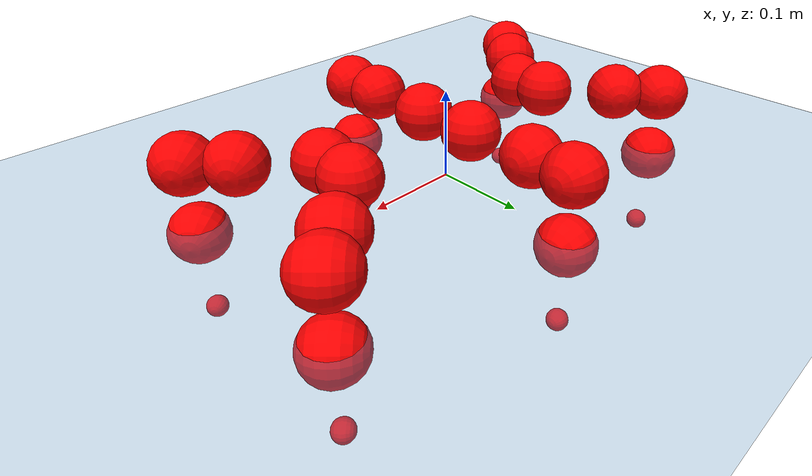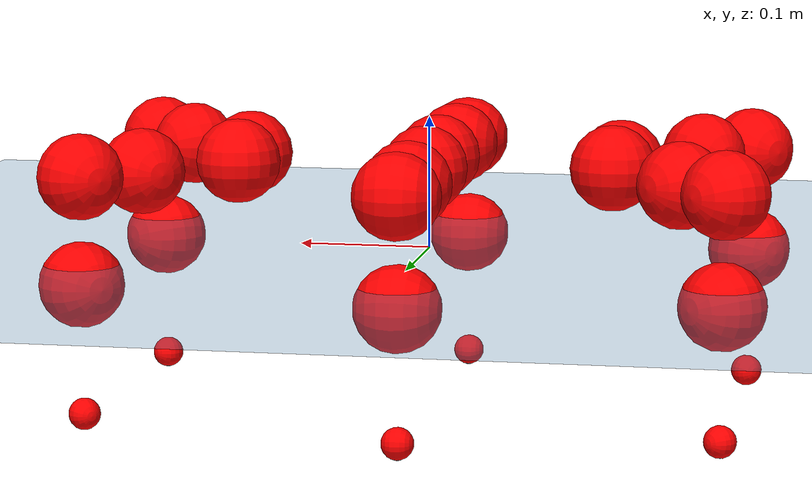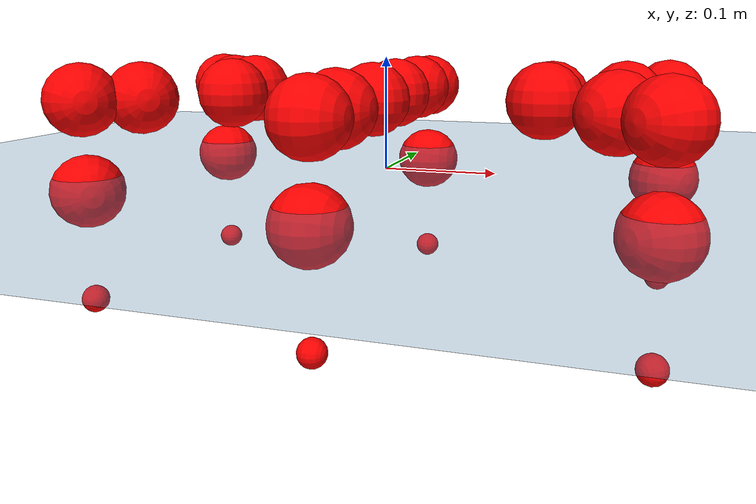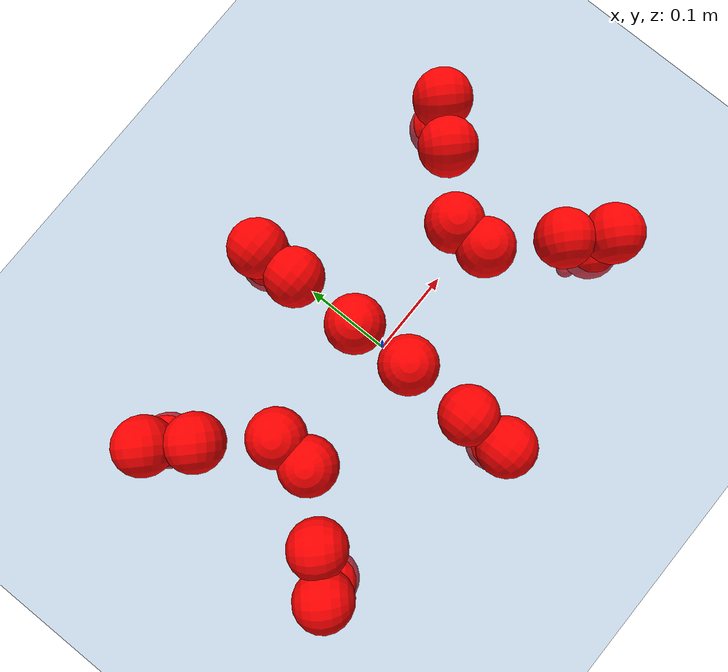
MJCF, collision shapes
<mujoco model="Golem">
  <compiler angle="radian" assetdir="assets" balanceinertia="true" inertiafromgeom="false"/>

  <option timestep="0.005" density="1.2" viscosity="2e-05"/>

  <size nkey="1"/>

  <visual>
    <quality shadowsize="8192"/>
    <map shadowclip="0.5"/>
  </visual>

  <default>
    <default class="/">
      <joint armature="0.01" damping="0.01" frictionloss="0.01"/>
      <geom contype="0" conaffinity="0" group="1" solref="-1000 -80"/>
      <site size="0.01 0.005 0.005" group="5"/>
      <general forcelimited="true" biastype="affine" gainprm="25" biasprm="0 -25 -0.5"/>
      <default class="visual">
        <geom type="mesh" group="2"/>
      </default>
      <default class="collision">
        <geom group="3"/>
      </default>
      <default class="foot">
        <geom size="0.01 0 0" condim="6" group="4" priority="1" solimp="0.015 1 0.01"/>
      </default>
      <default class="reward_collision_sphere">
        <geom group="5" rgba="1 0 0 1"/>
      </default>
    </default>
  </default>

  <asset>
    <texture type="skybox" colorspace="auto" name="//unnamed_texture_0" builtin="gradient" rgb1="0.95 0.95 0.95" rgb2="0.95 0.95 0.95" width="100" height="600"/>
    <texture type="2d" colorspace="auto" name="texplane" builtin="checker" rgb1="0.345 0.575 0.748" rgb2="0.345 0.575 0.748" markrgb="1 1 1" width="512" height="512"/>
    <material name="MatPlane" class="/" texture="texplane" texuniform="true" texrepeat="2 2" specular="0.9"/>
    <mesh name="body" class="/" file="body.stl" scale="0.001 0.001 0.001"/>
    <mesh name="coxa" class="/" file="coxa.stl" scale="0.001 0.001 0.001"/>
    <mesh name="femur" class="/" file="femur.stl" scale="0.001 0.001 0.001"/>
    <mesh name="tibia" class="/" file="tibia.stl" scale="0.001 0.001 0.001"/>
    <mesh name="tarsus" class="/" file="tarsus.stl" scale="0.001 0.001 0.001"/>
  </asset>

  <worldbody>
    <geom name="floor" class="/" size="100 100 0.125" type="plane" group="0" material="MatPlane"/>
    <light name="toplight_shadow" class="/" pos="0 0 5" dir="0.0990148 0.0990148 -0.990148" type="directional" ambient="0.04 0.04 0.04" diffuse="0.55 0.55 0.55" specular="0.12 0.12 0.12"/>
    <light name="toplight_fill" class="/" pos="0 0 5" dir="0.0990148 0.0990148 -0.990148" type="directional" castshadow="false" ambient="0.04 0.04 0.04" diffuse="0.3 0.3 0.3" specular="0.08 0.08 0.08"/>
    <body name="trunk" pos="-8.71964e-05 0.000120633 0.000188715" quat="1 0.000244688 0.000223808 -0.000491889">
      <inertial pos="9.77878e-05 -0.000585927 -0.00359603" quat="1 -6.34279e-05 -2.22089e-05 -3.61359e-05" mass="1.90432" diaginertia="0.00627673 0.000226242 0.010957"/>
      <joint name="//unnamed_joint_0" type="free"/>
      <geom name="//unnamed_geom_1" class="/" pos="0 0 0.0651937" quat="1 0 0 0" type="mesh" rgba="0.9 0.9 0.9 1" mesh="body"/>
      <site name="imu" class="/" pos="0.122769 0.00436119 0.102893" size="0.00799212"/>
      <camera name="track" class="/" pos="0 -0.936552 0" quat="0.707107 0.707107 0 0" mode="trackcom"/>
      <camera name="ego_camera" class="/" pos="0.118392 0 0.101865" quat="-0.5 -0.5 0.5 0.5"/>
      <body name="coxa_RR" pos="-0.162551 -0.0395102 0.0660355" quat="0.382109 3.44097e-05 -0.0001853 -0.924117">
        <inertial pos="-0.000322998 0.000163589 0.00056844" quat="0.999994 0.00135442 -0.00328738 -0.000479523" mass="0.101477" diaginertia="0.00626519 0.000224581 0.010991"/>
        <joint name="coxa_joint_RR" class="/" pos="0 0 0" axis="0.00165444 0.00278739 -0.999995" range="-3.13388 3.12582" armature="0.00797981" damping="0.00826617" frictionloss="0.00765114"/>
        <geom name="//unnamed_geom_2" class="/" type="mesh" rgba="0.2 0.2 0.2 1" mesh="coxa"/>
        <geom name="//unnamed_geom_3" class="reward_collision_sphere" size="0.0319685" pos="-0.0273212 0 0"/>
        <body name="femur_RR" pos="0.05511 0.00146681 -0.00137646" quat="0.500004 -0.5 0.500007 0.499988">
          <inertial pos="0.000199098 2.12461e-05 -0.000386022" quat="1 -0.000316753 0.000188638 1.04689e-05" mass="0.101706" diaginertia="0.00619295 0.000222525 0.0110009"/>
          <joint name="femur_joint_RR" class="/" pos="0 0 0" axis="-0.00296753 -0.00147224 -0.999995" range="-3.12828 3.13293" armature="0.00792444" damping="0.00157824" frictionloss="0.0080916"/>
          <geom name="//unnamed_geom_4" class="/" type="mesh" rgba="0.9 0.9 0.9 1" mesh="femur"/>
          <geom name="//unnamed_geom_5" class="reward_collision_sphere" size="0.0319685"/>
          <body name="tibia_RR" pos="-0.000173258 -0.0506375 0.0013267" quat="0.000125618 1 0.000257243 0.00013672">
            <inertial pos="-0.00016817 -0.00043349 -0.000158727" quat="1 2.46105e-05 -2.14122e-05 3.41159e-05" mass="0.101957" diaginertia="0.00628918 0.000225129 0.0109479"/>
            <joint name="tibia_joint_RR" class="/" pos="0 0 0" axis="0.00218384 0.000208708 0.999998" range="-3.12485 3.13265" armature="0.00805165" damping="0" frictionloss="0.00779158"/>
            <geom name="//unnamed_geom_6" class="/" type="mesh" rgba="0.2 0.2 0.2 1" mesh="tibia"/>
            <geom name="//unnamed_geom_7" class="reward_collision_sphere" size="0.0319685"/>
            <body name="tarsus_RR" pos="0.0790002 -0.000316794 -0.00109679" quat="1 -3.0184e-05 0.000224244 -0.000101715">
              <inertial pos="0.0554323 0.000453648 0.0004274" quat="0.500006 0.498991 0.500471 0.500532" mass="0.10063" diaginertia="0.00613271 0.000224942 0.0107308"/>
              <joint name="tarsus_joint_RR" class="/" pos="0 0 0" axis="-0.00275934 0.000856189 0.999996" range="-3.12074 3.12888" armature="0.00799111" damping="0.00197387" frictionloss="0.00818032"/>
              <geom name="//unnamed_geom_8" class="/" type="mesh" rgba="0.9 0.9 0.9 1" mesh="tarsus"/>
              <geom name="foot_1" class="foot" size="0.00771563" pos="0.101999 0 0" quat="0 -0.707107 0 0.707107"/>
              <geom name="//unnamed_geom_10" class="reward_collision_sphere" size="0.0319685"/>
              <geom name="//unnamed_geom_11" class="reward_collision_sphere" size="0.0119882" pos="0.097901 0 0"/>
              <site name="foot_1" class="foot" pos="0.101999 0 0" quat="0 -0.707107 0 0.707107" size="0.00799212"/>
            </body>
          </body>
        </body>
      </body>
      <body name="coxa_RM" pos="-0.000601812 -0.0622522 0.0651113" quat="0.70714 -0.000252641 -4.84383e-05 -0.707074">
        <inertial pos="-0.000618364 -0.00027797 9.77091e-05" quat="1 2.73393e-05 -7.46516e-06 3.91014e-05" mass="0.101825" diaginertia="0.00620835 0.000226165 0.0110052"/>
        <joint name="coxa_joint_RM" class="/" pos="0 0 0" axis="-0.00350984 -0.00112283 -0.999993" stiffness="1.46811e-05" range="-3.1365 3.13795" armature="0.00837639" damping="0.00977774" frictionloss="0.00820006"/>
        <geom name="//unnamed_geom_12" class="/" type="mesh" rgba="0.2 0.2 0.2 1" mesh="coxa"/>
        <geom name="//unnamed_geom_13" class="reward_collision_sphere" size="0.0319685" pos="-0.0273212 0 0"/>
        <body name="femur_RM" pos="0.0521311 -0.00128304 -0.000760399" quat="0.499877 -0.49992 0.500076 0.500127">
          <inertial pos="-0.000740658 0.00010297 9.23383e-07" quat="0.999999 0.000827928 0.00056464 -0.000180268" mass="0.100534" diaginertia="0.00616636 0.000226278 0.0110252"/>
          <joint name="femur_joint_RM" class="/" pos="0 0 0" axis="0.00125 0.00138492 -0.999998" range="-3.12073 3.14496" armature="0.0080173" damping="0.000892007" frictionloss="0.00773121"/>
          <geom name="//unnamed_geom_14" class="/" type="mesh" rgba="0.9 0.9 0.9 1" mesh="femur"/>
          <geom name="//unnamed_geom_15" class="reward_collision_sphere" size="0.0319685"/>
          <body name="tibia_RM" pos="0.00134614 -0.0494946 -0.000945485" quat="0.000151234 1 -0.000160147 0.000186304">
            <inertial pos="-0.00053649 -0.000363248 -0.000233181" quat="1 0.000168488 0.00050421 0.000338311" mass="0.102089" diaginertia="0.00628411 0.00022385 0.0109372"/>
            <joint name="tibia_joint_RM" class="/" pos="0 0 0" axis="0.000226768 -0.000251582 1" range="-3.13012 3.15385" armature="0.00816212" damping="0.00222268" frictionloss="0.00840462"/>
            <geom name="//unnamed_geom_16" class="/" type="mesh" rgba="0.2 0.2 0.2 1" mesh="tibia"/>
            <geom name="//unnamed_geom_17" class="reward_collision_sphere" size="0.0319685"/>
            <body name="tarsus_RM" pos="0.0789748 0.000722978 0.000669441" quat="1 -9.99697e-05 -1.44363e-05 -3.70587e-05">
              <inertial pos="0.0540434 0.00075023 0.000328125" quat="0.499968 0.499657 0.497973 0.502392" mass="0.102594" diaginertia="0.00619167 0.000222878 0.0110611"/>
              <joint name="tarsus_joint_RM" class="/" pos="0 0 0" axis="7.33828e-05 0.000552438 1" range="-3.12412 3.11951" armature="0.00842247" damping="0.00224158" frictionloss="0.00788273"/>
              <geom name="//unnamed_geom_18" class="/" type="mesh" rgba="0.9 0.9 0.9 1" mesh="tarsus"/>
              <geom name="foot_2" class="foot" size="0.00820701" pos="0.101999 0 0" quat="0 -0.707107 0 0.707107"/>
              <geom name="//unnamed_geom_20" class="reward_collision_sphere" size="0.0319685"/>
              <geom name="//unnamed_geom_21" class="reward_collision_sphere" size="0.0119882" pos="0.097901 0 0"/>
              <site name="foot_2" class="foot" pos="0.101999 0 0" quat="0 -0.707107 0 0.707107" size="0.00799212"/>
            </body>
          </body>
        </body>
      </body>
      <body name="coxa_RF" pos="0.162924 -0.039773 0.0665857" quat="0.923858 7.2749e-05 0.000216352 -0.382736">
        <inertial pos="0.000673717 -0.00158799 -0.0005166" quat="0.999997 0.0025475 0.000535559 -1.57092e-05" mass="0.102376" diaginertia="0.00622417 0.000226426 0.0109782"/>
        <joint name="coxa_joint_RF" class="/" pos="0 0 0" axis="-0.00153998 -0.004268 -0.99999" range="-3.12233 3.15005" armature="0.00832712" damping="0.00223387" frictionloss="0.00782768"/>
        <geom name="//unnamed_geom_22" class="/" type="mesh" rgba="0.2 0.2 0.2 1" mesh="coxa"/>
        <geom name="//unnamed_geom_23" class="reward_collision_sphere" size="0.0319685" pos="-0.0273212 0 0"/>
        <body name="femur_RF" pos="0.0559084 0.00153086 -0.0021586" quat="0.499881 -0.500107 0.499891 0.50012">
          <inertial pos="-0.000203775 0.000142138 0.00063293" quat="0.999993 -0.00236755 0.000937122 0.00271602" mass="0.101675" diaginertia="0.00631211 0.000222459 0.0108954"/>
          <joint name="femur_joint_RF" class="/" pos="0 0 0" axis="-0.00173525 -0.000604659 -0.999998" range="-3.1506 3.13802" armature="0.00820471" damping="0" frictionloss="0.00779382"/>
          <geom name="//unnamed_geom_24" class="/" type="mesh" rgba="0.9 0.9 0.9 1" mesh="femur"/>
          <geom name="//unnamed_geom_25" class="reward_collision_sphere" size="0.0319685"/>
          <body name="tibia_RF" pos="0.000176599 -0.0510796 -0.000431672" quat="-0.000131431 1 -3.97471e-05 2.65361e-05">
            <inertial pos="0.000507804 -0.000703288 0.000572488" quat="0.999995 -0.000461803 0.00323277 -6.83809e-05" mass="0.101294" diaginertia="0.00621165 0.000225185 0.0109314"/>
            <joint name="tibia_joint_RF" class="/" pos="0 0 0" axis="-8.79633e-05 0.000223271 1" range="-3.14523 3.13606" armature="0.00811901" damping="0.0102592" frictionloss="0.0079956"/>
            <geom name="//unnamed_geom_26" class="/" type="mesh" rgba="0.2 0.2 0.2 1" mesh="tibia"/>
            <geom name="//unnamed_geom_27" class="reward_collision_sphere" size="0.0319685"/>
            <body name="tarsus_RF" pos="0.0806211 -0.000310873 0.000615831" quat="1 -7.83543e-06 -0.000285246 3.12065e-06">
              <inertial pos="0.054019 0.000472964 0.00105644" quat="0.499013 0.499051 0.501511 0.50042" mass="0.102398" diaginertia="0.00625444 0.000221956 0.0108495"/>
              <joint name="tarsus_joint_RF" class="/" pos="0 0 0" axis="-0.00487826 0.0040705 0.99998" range="-3.12357 3.13958" armature="0.00801104" damping="0.00132742" frictionloss="0.00772771"/>
              <geom name="//unnamed_geom_28" class="/" type="mesh" rgba="0.9 0.9 0.9 1" mesh="tarsus"/>
              <geom name="foot_3" class="foot" size="0.00806188" pos="0.101999 0 0" quat="0 -0.707107 0 0.707107"/>
              <geom name="//unnamed_geom_30" class="reward_collision_sphere" size="0.0319685"/>
              <geom name="//unnamed_geom_31" class="reward_collision_sphere" size="0.0119882" pos="0.097901 0 0"/>
              <site name="foot_3" class="foot" pos="0.101999 0 0" quat="0 -0.707107 0 0.707107" size="0.00799212"/>
            </body>
          </body>
        </body>
      </body>
      <body name="coxa_LR" pos="-0.160899 0.0414403 0.0674608" quat="0.382784 0.000125614 -0.000282984 0.923838">
        <inertial pos="0.000739326 -0.000645522 0.00172533" quat="0.999999 0.000960096 -0.00101825 0.000387575" mass="0.102084" diaginertia="0.0062735 0.000224678 0.0109448"/>
        <joint name="coxa_joint_LR" class="/" pos="0 0 0" axis="-0.00194063 -0.000574301 -0.999998" range="-3.1466 3.13887" armature="0.00827028" damping="0.00384534" frictionloss="0.00800092"/>
        <geom name="//unnamed_geom_32" class="/" type="mesh" rgba="0.2 0.2 0.2 1" mesh="coxa"/>
        <geom name="//unnamed_geom_33" class="reward_collision_sphere" size="0.0319685" pos="-0.0273212 0 0"/>
        <body name="femur_LR" pos="0.055366 -0.00378755 -0.00219758" quat="0.50005 -0.500297 0.499741 0.499911">
          <inertial pos="-0.000563719 -0.000563311 -0.00034671" quat="1 0.000280338 2.86791e-05 -3.24782e-06" mass="0.101342" diaginertia="0.00625462 0.000225255 0.0108344"/>
          <joint name="femur_joint_LR" class="/" pos="0 0 0" axis="-0.00098356 -0.00167809 0.999998" range="-3.15674 3.16347" armature="0.00800013" damping="0.00747919" frictionloss="0.00840965"/>
          <geom name="//unnamed_geom_34" class="/" type="mesh" rgba="0.9 0.9 0.9 1" mesh="femur"/>
          <geom name="//unnamed_geom_35" class="reward_collision_sphere" size="0.0319685"/>
          <body name="tibia_LR" pos="0.000337948 -0.0516803 -0.00206733" quat="0.000118239 1 -4.10134e-05 -0.000265011">
            <inertial pos="-0.00071726 0.000533442 -0.0003075" quat="1 -0.000111108 6.96771e-05 6.82939e-05" mass="0.102665" diaginertia="0.0062308 0.000222348 0.0108962"/>
            <joint name="tibia_joint_LR" class="/" pos="0 0 0" axis="-0.00143102 -0.000620017 -0.999999" range="-3.14133 3.13321" armature="0.00764554" damping="0.00117991" frictionloss="0.00835826"/>
            <geom name="//unnamed_geom_36" class="/" type="mesh" rgba="0.2 0.2 0.2 1" mesh="tibia"/>
            <geom name="//unnamed_geom_37" class="reward_collision_sphere" size="0.0319685"/>
            <body name="tarsus_LR" pos="0.0798281 -0.000814357 0.0006383" quat="1 2.84222e-07 5.45664e-07 -9.5973e-10">
              <inertial pos="0.0554304 0.00111248 -4.63953e-05" quat="0.499245 0.49948 0.501261 0.500012" mass="0.102669" diaginertia="0.0062955 0.000228058 0.0109896"/>
              <joint name="tarsus_joint_LR" class="/" pos="0 0 0" axis="0.000690252 -0.000792764 -0.999999" range="-3.12656 3.14048" armature="0.00798275" damping="0" frictionloss="0.00818598"/>
              <geom name="//unnamed_geom_38" class="/" type="mesh" rgba="0.9 0.9 0.9 1" mesh="tarsus"/>
              <geom name="foot_4" class="foot" size="0.00785426" pos="0.101999 0 0" quat="0.707107 0 -0.707107 0"/>
              <geom name="//unnamed_geom_40" class="reward_collision_sphere" size="0.0319685"/>
              <geom name="//unnamed_geom_41" class="reward_collision_sphere" size="0.0119882" pos="0.097901 0 0"/>
              <site name="foot_4" class="foot" pos="0.101999 0 0" quat="0.707107 0 -0.707107 0" size="0.00799212"/>
            </body>
          </body>
        </body>
      </body>
      <body name="coxa_LM" pos="-0.00244048 0.0614101 0.0655758" quat="0.706749 -0.000496817 -0.000564159 0.707464">
        <inertial pos="0.000880922 0.000204942 -0.000138255" quat="0.999999 -0.000147021 -0.00138119 0.000399462" mass="0.104283" diaginertia="0.00644267 0.00022862 0.0110217"/>
        <joint name="coxa_joint_LM" class="/" pos="0 0 0" axis="0.000221136 -0.000401234 -1" stiffness="0.00334496" range="-3.13649 3.12982" armature="0.00825843" damping="0.0038413" frictionloss="0.00789948"/>
        <geom name="//unnamed_geom_42" class="/" type="mesh" rgba="0.2 0.2 0.2 1" mesh="coxa"/>
        <geom name="//unnamed_geom_43" class="reward_collision_sphere" size="0.0319685" pos="-0.0273212 0 0"/>
        <body name="femur_LM" pos="0.0515029 0.00170956 -0.000121652" quat="0.499999 -0.500007 0.499959 0.500035">
          <inertial pos="-0.00022082 0.000680117 -0.000123114" quat="0.999991 0.000282151 0.00397922 0.00158038" mass="0.101562" diaginertia="0.00620661 0.000221855 0.0108012"/>
          <joint name="femur_joint_LM" class="/" pos="0 0 0" axis="-0.000433138 0.000384705 1" range="-3.13573 3.13721" armature="0.00834035" damping="0" frictionloss="0.00768184"/>
          <geom name="//unnamed_geom_44" class="/" type="mesh" rgba="0.9 0.9 0.9 1" mesh="femur"/>
          <geom name="//unnamed_geom_45" class="reward_collision_sphere" size="0.0319685"/>
          <body name="tibia_LM" pos="0.00122823 -0.0486826 0.000566941" quat="3.97428e-05 1 -0.000152887 -0.000157453">
            <inertial pos="-0.000815156 -0.00076808 8.99072e-05" quat="1 -1.93677e-05 -5.59764e-05 2.16643e-05" mass="0.102329" diaginertia="0.00630295 0.000225745 0.0110453"/>
            <joint name="tibia_joint_LM" class="/" pos="0 0 0" axis="0.000217117 1.2365e-05 -1" range="-3.14847 3.14" armature="0.00792276" damping="0" frictionloss="0.00835184"/>
            <geom name="//unnamed_geom_46" class="/" type="mesh" rgba="0.2 0.2 0.2 1" mesh="tibia"/>
            <geom name="//unnamed_geom_47" class="reward_collision_sphere" size="0.0319685"/>
            <body name="tarsus_LM" pos="0.0803623 -0.000143354 -0.000604388" quat="1 -2.94853e-05 -4.94953e-05 -4.34051e-05">
              <inertial pos="0.0556317 1.7753e-05 -0.00010808" quat="0.499027 0.499795 0.500083 0.501093" mass="0.103745" diaginertia="0.00631623 0.000226418 0.0110218"/>
              <joint name="tarsus_joint_LM" class="/" pos="0 0 0" axis="-7.8397e-05 -0.00288974 -0.999996" range="-3.13938 3.1485" armature="0.00796636" damping="0.00255219" frictionloss="0.00803747"/>
              <geom name="//unnamed_geom_48" class="/" type="mesh" rgba="0.9 0.9 0.9 1" mesh="tarsus"/>
              <geom name="foot_5" class="foot" size="0.00818064" pos="0.101999 0 0" quat="0.707107 0 -0.707107 0"/>
              <geom name="//unnamed_geom_50" class="reward_collision_sphere" size="0.0319685"/>
              <geom name="//unnamed_geom_51" class="reward_collision_sphere" size="0.0119882" pos="0.097901 0 0"/>
              <site name="foot_5" class="foot" pos="0.101999 0 0" quat="0.707107 0 -0.707107 0" size="0.00799212"/>
            </body>
          </body>
        </body>
      </body>
      <body name="coxa_LF" pos="0.163347 0.039307 0.0656955" quat="0.923904 0.000145879 -0.000137878 0.382625">
        <inertial pos="-0.00049141 0.000673966 -4.01746e-06" quat="1 -0.000464496 1.05208e-05 0.000737311" mass="0.102252" diaginertia="0.0062839 0.000225755 0.0110276"/>
        <joint name="coxa_joint_LF" class="/" pos="0 0 0" axis="0.000705055 -0.00132621 -0.999999" range="-3.12587 3.1492" armature="0.00798108" damping="0.000157717" frictionloss="0.00762617"/>
        <geom name="//unnamed_geom_52" class="/" type="mesh" rgba="0.2 0.2 0.2 1" mesh="coxa"/>
        <geom name="//unnamed_geom_53" class="reward_collision_sphere" size="0.0319685" pos="-0.0273212 0 0"/>
        <body name="femur_LF" pos="0.0546785 -0.00225228 -0.00121948" quat="0.499677 -0.499937 0.500447 0.499939">
          <inertial pos="0.000392861 -0.00051728 -0.000577926" quat="0.999985 0.00440629 0.00270997 0.00198728" mass="0.10178" diaginertia="0.00626603 0.000223183 0.0110558"/>
          <joint name="femur_joint_LF" class="/" pos="0 0 0" axis="-3.67852e-05 1.8667e-07 1" range="-3.14515 3.1557" armature="0.00797135" damping="0" frictionloss="0.00749484"/>
          <geom name="//unnamed_geom_54" class="/" type="mesh" rgba="0.9 0.9 0.9 1" mesh="femur"/>
          <geom name="//unnamed_geom_55" class="reward_collision_sphere" size="0.0319685"/>
          <body name="tibia_LF" pos="-4.71462e-05 -0.0518361 -0.000151043" quat="2.90223e-05 1 3.14107e-05 -1.85144e-05">
            <inertial pos="0.000420052 8.74872e-06 -0.000359466" quat="0.99999 0.00117123 -0.00067447 0.00435093" mass="0.101131" diaginertia="0.00628121 0.000227732 0.011093"/>
            <joint name="tibia_joint_LF" class="/" pos="0 0 0" axis="-0.000256477 -7.25181e-05 -1" range="-3.15918 3.1345" armature="0.00763332" damping="0" frictionloss="0.00826985"/>
            <geom name="//unnamed_geom_56" class="/" type="mesh" rgba="0.2 0.2 0.2 1" mesh="tibia"/>
            <geom name="//unnamed_geom_57" class="reward_collision_sphere" size="0.0319685"/>
            <body name="tarsus_LF" pos="0.080261 0.000383161 0.000304112" quat="1 7.66445e-05 0.000105354 -1.95985e-05">
              <inertial pos="0.0571229 9.93205e-05 0.00135354" quat="0.500191 0.499839 0.499897 0.500074" mass="0.102351" diaginertia="0.0062956 0.000226929 0.0110922"/>
              <joint name="tarsus_joint_LF" class="/" pos="0 0 0" axis="-0.000565813 0.000553262 -1" stiffness="0.0314647" range="-3.13559 3.11791" armature="0.00794318" damping="0.023417" frictionloss="0.0081658"/>
              <geom name="//unnamed_geom_58" class="/" type="mesh" rgba="0.9 0.9 0.9 1" mesh="tarsus"/>
              <geom name="foot_6" class="foot" size="0.00794819" pos="0.101999 0 0" quat="0.707107 0 -0.707107 0"/>
              <geom name="//unnamed_geom_60" class="reward_collision_sphere" size="0.0319685"/>
              <geom name="//unnamed_geom_61" class="reward_collision_sphere" size="0.0119882" pos="0.097901 0 0"/>
              <site name="foot_6" class="foot" pos="0.101999 0 0" quat="0.707107 0 -0.707107 0" size="0.00799212"/>
            </body>
          </body>
        </body>
      </body>
    </body>
  </worldbody>

  <contact>
    <pair class="/" geom1="floor" geom2="foot_1" name="//unnamed_contact_0"/>
    <pair class="/" geom1="floor" geom2="foot_2" name="//unnamed_contact_1"/>
    <pair class="/" geom1="floor" geom2="foot_3" name="//unnamed_contact_2"/>
    <pair class="/" geom1="floor" geom2="foot_4" name="//unnamed_contact_3"/>
    <pair class="/" geom1="floor" geom2="foot_5" name="//unnamed_contact_4"/>
    <pair class="/" geom1="floor" geom2="foot_6" name="//unnamed_contact_5"/>
  </contact>

  <actuator>
    <general name="coxa_joint_RR" class="/" joint="coxa_joint_RR" forcerange="-5.72405 5.72405" gainprm="18.6848" biasprm="0 -18.6848 -0.405633"/>
    <general name="femur_joint_RR" class="/" joint="femur_joint_RR" forcerange="-5.66244 5.66244" gainprm="18.6848" biasprm="0 -18.6848 -0.405633"/>
    <general name="tibia_joint_RR" class="/" joint="tibia_joint_RR" forcerange="-5.79545 5.79545" gainprm="18.6848" biasprm="0 -18.6848 -0.405633"/>
    <general name="tarsus_joint_RR" class="/" joint="tarsus_joint_RR" forcerange="-5.93439 5.93439" gainprm="18.6848" biasprm="0 -18.6848 -0.405633"/>
    <general name="coxa_joint_RM" class="/" joint="coxa_joint_RM" forcerange="-5.73374 5.73374" gainprm="18.6848" biasprm="0 -18.6848 -0.405633"/>
    <general name="femur_joint_RM" class="/" joint="femur_joint_RM" forcerange="-5.83389 5.83389" gainprm="18.6848" biasprm="0 -18.6848 -0.405633"/>
    <general name="tibia_joint_RM" class="/" joint="tibia_joint_RM" forcerange="-6.01974 6.01974" gainprm="18.6848" biasprm="0 -18.6848 -0.405633"/>
    <general name="tarsus_joint_RM" class="/" joint="tarsus_joint_RM" forcerange="-6.05558 6.05558" gainprm="18.6848" biasprm="0 -18.6848 -0.405633"/>
    <general name="coxa_joint_RF" class="/" joint="coxa_joint_RF" forcerange="-5.93509 5.93509" gainprm="18.6848" biasprm="0 -18.6848 -0.405633"/>
    <general name="femur_joint_RF" class="/" joint="femur_joint_RF" forcerange="-5.73032 5.73032" gainprm="18.6848" biasprm="0 -18.6848 -0.405633"/>
    <general name="tibia_joint_RF" class="/" joint="tibia_joint_RF" forcerange="-5.99993 5.99993" gainprm="18.6848" biasprm="0 -18.6848 -0.405633"/>
    <general name="tarsus_joint_RF" class="/" joint="tarsus_joint_RF" forcerange="-5.78241 5.78241" gainprm="18.6848" biasprm="0 -18.6848 -0.405633"/>
    <general name="coxa_joint_LR" class="/" joint="coxa_joint_LR" forcerange="-5.63793 5.63793" gainprm="18.6848" biasprm="0 -18.6848 -0.405633"/>
    <general name="femur_joint_LR" class="/" joint="femur_joint_LR" forcerange="-5.97271 5.97271" gainprm="18.6848" biasprm="0 -18.6848 -0.405633"/>
    <general name="tibia_joint_LR" class="/" joint="tibia_joint_LR" forcerange="-6.0104 6.0104" gainprm="18.6848" biasprm="0 -18.6848 -0.405633"/>
    <general name="tarsus_joint_LR" class="/" joint="tarsus_joint_LR" forcerange="-5.7467 5.7467" gainprm="18.6848" biasprm="0 -18.6848 -0.405633"/>
    <general name="coxa_joint_LM" class="/" joint="coxa_joint_LM" forcerange="-5.8479 5.8479" gainprm="18.6848" biasprm="0 -18.6848 -0.405633"/>
    <general name="femur_joint_LM" class="/" joint="femur_joint_LM" forcerange="-5.81913 5.81913" gainprm="18.6848" biasprm="0 -18.6848 -0.405633"/>
    <general name="tibia_joint_LM" class="/" joint="tibia_joint_LM" forcerange="-5.62291 5.62291" gainprm="18.6848" biasprm="0 -18.6848 -0.405633"/>
    <general name="tarsus_joint_LM" class="/" joint="tarsus_joint_LM" forcerange="-5.83289 5.83289" gainprm="18.6848" biasprm="0 -18.6848 -0.405633"/>
    <general name="coxa_joint_LF" class="/" joint="coxa_joint_LF" forcerange="-5.84158 5.84158" gainprm="18.6848" biasprm="0 -18.6848 -0.405633"/>
    <general name="femur_joint_LF" class="/" joint="femur_joint_LF" forcerange="-5.87201 5.87201" gainprm="18.6848" biasprm="0 -18.6848 -0.405633"/>
    <general name="tibia_joint_LF" class="/" joint="tibia_joint_LF" forcerange="-5.83251 5.83251" gainprm="18.6848" biasprm="0 -18.6848 -0.405633"/>
    <general name="tarsus_joint_LF" class="/" joint="tarsus_joint_LF" forcerange="-5.84047 5.84047" gainprm="18.6848" biasprm="0 -18.6848 -0.405633"/>
  </actuator>

  <sensor>
    <gyro site="imu" name="imu_angular_velocity"/>
    <velocimeter site="imu" name="imu_linear_velocity"/>
    <framelinvel objtype="site" objname="foot_1" name="foot_1_global_linear_velocity"/>
    <framelinvel objtype="site" objname="foot_2" name="foot_2_global_linear_velocity"/>
    <framelinvel objtype="site" objname="foot_3" name="foot_3_global_linear_velocity"/>
    <framelinvel objtype="site" objname="foot_4" name="foot_4_global_linear_velocity"/>
    <framelinvel objtype="site" objname="foot_5" name="foot_5_global_linear_velocity"/>
    <framelinvel objtype="site" objname="foot_6" name="foot_6_global_linear_velocity"/>
  </sensor>

  <keyframe>
    <key name="home" qpos="0 0 0.1457 1 0 0 0 0 0 0 0 0 0 0 0 0 0 0 0 0 0 0 0 0 0 0 0 0 0 0 0"/>
  </keyframe>
</mujoco>
